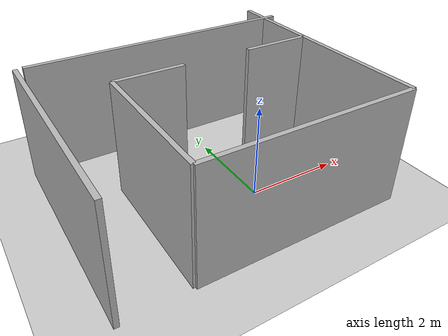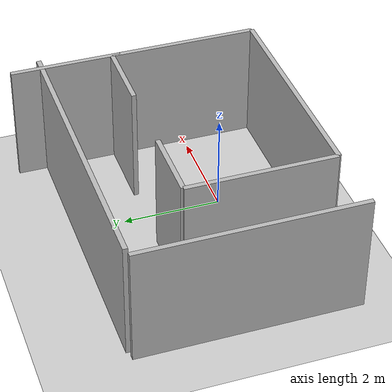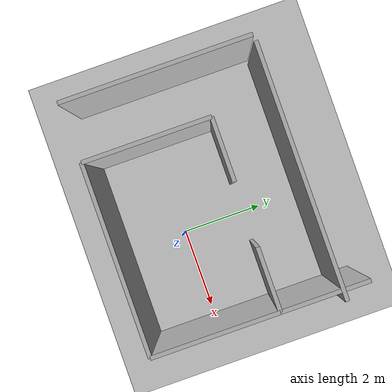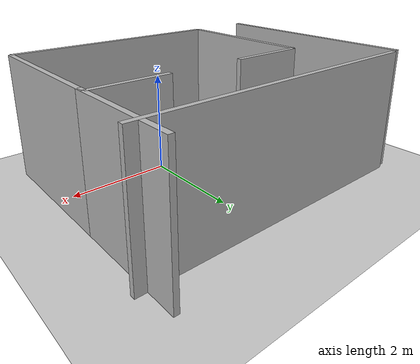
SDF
<?xml version="1.0"?>
<sdf version="1.6">
  <world name="sec_world">

    <include><uri>model://sun</uri></include>
    <include><uri>model://ground_plane</uri></include>

    <!-- ROOM -->
    <model name="room_west">
      <static>true</static>
      <link name="link">
        <collision name="c"><geometry><box><size>0.10 3.048 2.5</size></box></geometry></collision>
        <visual name="v"><geometry><box><size>0.10 3.048 2.5</size></box></geometry></visual>
        <pose>-2.286 0 1.25 0 0 0</pose>
      </link>
    </model>

    <model name="room_east">
      <static>true</static>
      <link name="link">
        <collision name="c"><geometry><box><size>0.10 3.048 2.5</size></box></geometry></collision>
        <visual name="v"><geometry><box><size>0.10 3.048 2.5</size></box></geometry></visual>
        <pose>2.286 0 1.25 0 0 0</pose>
      </link>
    </model>

    <model name="room_south">
      <static>true</static>
      <link name="link">
        <collision name="c"><geometry><box><size>4.572 0.10 2.5</size></box></geometry></collision>
        <visual name="v"><geometry><box><size>4.572 0.10 2.5</size></box></geometry></visual>
        <pose>0 -1.524 1.25 0 0 0</pose>
      </link>
    </model>

    <!-- North wall -->
    <model name="room_north_left">
      <static>true</static>
      <link name="link">
        <collision name="c"><geometry><box><size>1.524 0.10 2.5</size></box></geometry></collision>
        <visual name="v"><geometry><box><size>1.524 0.10 2.5</size></box></geometry></visual>
        <pose>-1.524 1.524 1.25 0 0 0</pose>
      </link>
    </model>
    <model name="room_north_right">
      <static>true</static>
      <link name="link">
        <collision name="c"><geometry><box><size>1.524 0.10 2.5</size></box></geometry></collision>
        <visual name="v"><geometry><box><size>1.524 0.10 2.5</size></box></geometry></visual>
        <pose>1.524 1.524 1.25 0 0 0</pose>
      </link>
    </model>

    <!-- East outer wall -->
    <model name="hall_east_outer">
      <static>true</static>
      <link name="link">
        <collision name="c"><geometry><box><size>0.10 6.096 2.5</size></box></geometry></collision>
        <visual name="v"><geometry><box><size>0.10 6.096 2.5</size></box></geometry></visual>
        <pose>-0.5 3.0 1.25 0 0 1.5708</pose>
      </link>
    </model>

    <!-- North inner wall -->
    <model name="hall_north_inner_left">
      <static>true</static>
      <link name="link">
        <collision name="c"><geometry><box><size>2.286 0.10 2.5</size></box></geometry></collision>
        <visual name="v"><geometry><box><size>2.286 0.10 2.5</size></box></geometry></visual>
        <pose>2.286 2.5 1.25 0 0 1.5708</pose>
      </link>
    </model>

    <!-- North outer wall -->
    <model name="hall_north_outer">
      <static>true</static>
      <link name="link">
        <collision name="c"><geometry><box><size>0.10 4.572 2.5</size></box></geometry></collision>
        <visual name="v"><geometry><box><size>0.10 4.572 2.5</size></box></geometry></visual>
        <pose>-3.7 0.7 1.25 0 0 0</pose>
      </link>
    </model>

  </world>
</sdf>
